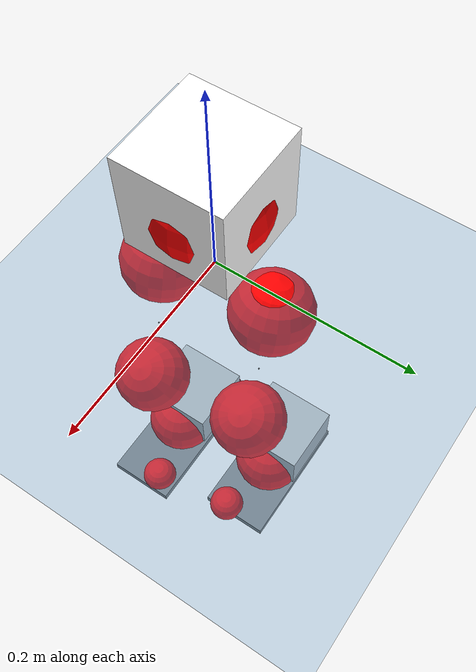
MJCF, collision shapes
<mujoco model="pi_12dof_release_v1">
  <compiler angle="radian" assetdir="assets" balanceinertia="true" inertiafromgeom="false"/>

  <option timestep="0.005" density="1.2" viscosity="2e-05"/>

  <size nkey="1"/>

  <visual>
    <quality shadowsize="8192"/>
    <map shadowclip="0.5"/>
  </visual>

  <default>
    <default class="/">
      <joint armature="0.01" damping="0.01" frictionloss="0.01"/>
      <geom contype="0" conaffinity="0" group="1" solref="-1000 -80"/>
      <site size="0.01 0.005 0.005" group="5"/>
      <general forcelimited="true" biastype="affine" gainprm="20" biasprm="0 -20 -0.5"/>
      <default class="foot">
        <geom size="0.0845 0.036 0.005" type="box" condim="6" group="4" priority="1" friction="0.9 0.2 0.2" solimp="0.015 1 0.005"/>
      </default>
      <default class="reward_collision_sphere">
        <geom group="5" rgba="1 0 0 1"/>
      </default>
    </default>
  </default>

  <asset>
    <texture type="skybox" colorspace="auto" name="//unnamed_texture_0" builtin="gradient" rgb1="0.95 0.95 0.95" rgb2="0.95 0.95 0.95" width="100" height="600"/>
    <texture type="2d" colorspace="auto" name="texplane" builtin="checker" rgb1="0.345 0.575 0.748" rgb2="0.345 0.575 0.748" markrgb="1 1 1" width="512" height="512"/>
    <material name="MatPlane" class="/" texture="texplane" texuniform="true" texrepeat="2 2" specular="0.9"/>
    <mesh name="baselink_1" class="/" file="baselink_1.STL"/>
    <mesh name="r_hip_pitch_link" class="/" file="r_hip_pitch_link.STL"/>
    <mesh name="r_hip_roll_link" class="/" file="r_hip_roll_link.STL"/>
    <mesh name="r_thigh_link" class="/" file="r_thigh_link.STL"/>
    <mesh name="r_calf_link" class="/" file="r_calf_link.STL"/>
    <mesh name="r_ankle_pitch_link" class="/" file="r_ankle_pitch_link.STL"/>
    <mesh name="r_ankle_roll_link" class="/" file="r_ankle_roll_link.STL"/>
    <mesh name="l_hip_pitch_link" class="/" file="l_hip_pitch_link.STL"/>
    <mesh name="l_hip_roll_link" class="/" file="l_hip_roll_link.STL"/>
    <mesh name="l_thigh_link" class="/" file="l_thigh_link.STL"/>
    <mesh name="l_calf_link" class="/" file="l_calf_link.STL"/>
    <mesh name="l_ankle_pitch_link" class="/" file="l_ankle_pitch_link.STL"/>
    <mesh name="l_ankle_roll_link" class="/" file="l_ankle_roll_link.STL"/>
  </asset>

  <worldbody>
    <geom name="floor" class="/" size="100 100 0.125" type="plane" group="0" material="MatPlane"/>
    <light name="toplight_shadow" class="/" pos="0 0 5" dir="0.0990148 0.0990148 -0.990148" type="directional" ambient="0.04 0.04 0.04" diffuse="0.55 0.55 0.55" specular="0.12 0.12 0.12"/>
    <light name="toplight_fill" class="/" pos="0 0 5" dir="0.0990148 0.0990148 -0.990148" type="directional" castshadow="false" ambient="0.04 0.04 0.04" diffuse="0.3 0.3 0.3" specular="0.08 0.08 0.08"/>
    <body name="trunk" pos="-0.000524638 -0.00231627 0.000275102" quat="0.999999 0.000868415 0.000344364 0.000702521">
      <inertial pos="0.000920184 -0.00283273 0.0511772" quat="0.690727 0.0150431 0.00805823 0.722914" mass="2.3022" diaginertia="0.0150531 0.00219083 0.0104825"/>
      <joint name="//unnamed_joint_0" type="free"/>
      <geom name="//unnamed_geom_1" class="/" type="mesh" density="0" rgba="1 1 1 1" mesh="baselink_1"/>
      <geom name="//unnamed_geom_2" class="/" size="0.0511009 0.0511009 0.0511009" pos="0 0 0.0962349" type="box" rgba="1 1 1 1"/>
      <geom name="//unnamed_geom_3" class="reward_collision_sphere" size="0.056211" pos="0 0 0.0842055"/>
      <site name="imu" class="/" pos="0.00341163 -7.53375e-05 -2.60673e-05" size="0.0102202"/>
      <camera name="track" class="/" pos="0 -1.51784 0" quat="0.707107 0.707107 0 0" mode="trackcom"/>
      <camera name="ego_camera" class="/" pos="0.0828149 0 0.216528" quat="-0.5 -0.5 0.5 0.5"/>
      <body name="r_hip_pitch_link" pos="0.00101454 -0.0165478 -0.0397193" quat="0.992209 0.000309967 -0.124585 9.31265e-05">
        <inertial pos="0.000875473 -0.0454772 -0.000744045" quat="-0.0156711 0.706807 -0.0382212 0.706199" mass="0.392622" diaginertia="0.000176315 2.40611e-05 0.000206193"/>
        <joint name="r_hip_pitch_joint" class="/" pos="0 0 0" axis="0.00461993 -0.999978 -0.00465799" range="-1.70519 1.28241" armature="0.0103591" damping="0.0260682" frictionloss="0.0115894"/>
        <geom name="//unnamed_geom_4" class="/" type="mesh" density="0" rgba="0.75294 0.75294 0.75294 1" mesh="r_hip_pitch_link"/>
        <geom name="//unnamed_geom_5" class="/" size="0.000511009 0.000511009 0.000511009" type="box" rgba="0.75294 0.75294 0.75294 1"/>
        <body name="r_hip_roll_link" pos="0.00312007 -0.0399307 0.00054541" quat="0.999999 -0.000369775 0.000772919 -0.000869002">
          <inertial pos="-0.00314411 0.00136386 -0.0725708" quat="0.706745 -0.0795537 -0.0801823 0.698393" mass="0.424247" diaginertia="0.00053159 7.25156e-05 0.000324726"/>
          <joint name="r_hip_roll_joint" class="/" pos="0 0 0" axis="-0.999976 -0.00502887 0.00485549" stiffness="0.000348587" range="-0.12676 0.484196" armature="0.011708" damping="0.0242276" frictionloss="0.0105521"/>
          <geom name="//unnamed_geom_6" class="/" type="mesh" density="0" rgba="0.75294 0.75294 0.75294 1" mesh="r_hip_roll_link"/>
          <geom name="//unnamed_geom_7" class="/" size="0.000511009 0.000511009 0.000511009" type="box" rgba="0.75294 0.75294 0.75294 1"/>
          <geom name="//unnamed_geom_8" class="reward_collision_sphere" size="0.0408808"/>
          <body name="r_thigh_link" pos="0.00118583 0.0024185 -0.083885" quat="1 -6.33312e-07 -0.000674025 -0.000154566">
            <inertial pos="-0.00224351 -0.00122753 -0.0599426" quat="0.736795 0.676117 0.000198647 -0.000230294" mass="0.117126" diaginertia="0.000199898 2.39785e-05 0.00014322"/>
            <joint name="r_thigh_joint" class="/" pos="0 0 0" axis="0.0104645 0.00510369 -0.999932" range="-0.352273 0.543388" armature="0.0117337" damping="0" frictionloss="0.0115432"/>
            <geom name="//unnamed_geom_9" class="/" type="mesh" density="0" rgba="0.75294 0.75294 0.75294 1" mesh="r_thigh_link"/>
            <geom name="//unnamed_geom_10" class="/" size="0.000511009 0.000511009 0.000511009" type="box" rgba="0.75294 0.75294 0.75294 1"/>
            <body name="r_calf_link" pos="-0.00182778 -0.00364964 -0.0860831" quat="0.947575 -0.000183182 0.319534 0.000291292">
              <inertial pos="0.000980718 -0.000115295 -0.0845725" quat="0.999921 0.00238057 0.0122828 0.00143297" mass="0.870846" diaginertia="0.00563955 0.00088103 0.000443107"/>
              <joint name="r_calf_joint" class="/" pos="0 0 0" axis="-0.0118637 -0.999924 -0.00328831" range="-1.68058 0.670009" armature="0.010477" damping="0.00261234" frictionloss="0.011616"/>
              <geom name="//unnamed_geom_11" class="/" type="mesh" density="0" rgba="0.75294 0.75294 0.75294 1" mesh="r_calf_link"/>
              <geom name="//unnamed_geom_12" class="/" size="0.000511009 0.000511009 0.000511009" type="box" rgba="0.75294 0.75294 0.75294 1"/>
              <geom name="//unnamed_geom_13" class="reward_collision_sphere" size="0.0408808"/>
              <body name="r_ankle_pitch_link" pos="-0.00031861 -0.00177639 -0.170722" quat="0.980068 -1.1076e-06 -0.19866 -3.09608e-06">
                <inertial pos="0.00656123 0.000653893 0.00237637" quat="0.00256934 0.707035 -0.00276338 0.707169" mass="0.187379" diaginertia="0.00049198 5.60571e-05 0.000302975"/>
                <joint name="r_ankle_pitch_joint" class="/" pos="0 0 0" axis="-0.005631 -0.999984 -0.000920906" stiffness="0.000863664" range="-1.34433 0.447272" armature="0.0115129" damping="0.00872794" frictionloss="0.0116354"/>
                <geom name="//unnamed_geom_14" class="/" type="mesh" density="0" rgba="0.75294 0.75294 0.75294 1" mesh="r_ankle_pitch_link"/>
                <geom name="//unnamed_geom_15" class="/" size="0.0398587 0.0408808 0.0255505" type="box" rgba="0.75294 0.75294 0.75294 1"/>
                <body name="r_ankle_roll_link" pos="0.0851165 -0.000763898 0.00268873" quat="1 0.000137695 -0.000151813 -0.000379375">
                  <inertial pos="-0.02851 0.00239718 -0.0178447" quat="0.560993 0.432619 0.434214 0.556405" mass="0.570967" diaginertia="0.00190353 0.000275739 0.000716729"/>
                  <joint name="r_ankle_roll_joint" class="/" pos="0 0 0" axis="-0.999954 0.0093136 0.00228007" stiffness="0.00981846" range="-0.103404 0.20638" armature="0.0104827" damping="0.0205538" frictionloss="0.010102"/>
                  <geom name="//unnamed_geom_16" class="/" type="mesh" density="0" rgba="0.75294 0.75294 0.75294 1" mesh="r_ankle_roll_link"/>
                  <geom name="//unnamed_geom_17" class="/" type="mesh" rgba="0.75294 0.75294 0.75294 1" mesh="r_ankle_roll_link"/>
                  <geom name="right_foot" class="foot" size="0.092591 0.0387522 0.00491471" pos="-0.0563141 0 -0.0529292"/>
                  <geom name="//unnamed_geom_19" class="reward_collision_sphere" size="0.0408808" pos="-0.0552099 0 -0.0240587"/>
                  <geom name="//unnamed_geom_20" class="reward_collision_sphere" size="0.0204404" pos="0.016563 0.0151784 -0.0481174"/>
                  <geom name="//unnamed_geom_21" class="reward_collision_sphere" size="0.0204404" pos="-0.132504 0.0151784 -0.0481174"/>
                  <site name="right_foot" class="foot" pos="-0.0563141 0 -0.0529292" size="0.0102202"/>
                </body>
              </body>
            </body>
          </body>
        </body>
      </body>
      <body name="l_hip_pitch_link" pos="-0.00145559 0.0191734 -0.0366581" quat="0.992199 -0.00010638 -0.124665 -6.13464e-05">
        <inertial pos="-0.000190647 0.041687 0.0019963" quat="-0.0417302 0.707413 0.0308507 0.704893" mass="0.401769" diaginertia="0.000212245 2.58898e-05 0.000257917"/>
        <joint name="l_hip_pitch_joint" class="/" pos="0 0 0" axis="0.00100272 0.999999 0.000890783" stiffness="0.0105131" range="-1.27049 1.80913" armature="0.0100473" damping="0.0107908" frictionloss="0.0100707"/>
        <geom name="//unnamed_geom_22" class="/" type="mesh" density="0" rgba="0.75294 0.75294 0.75294 1" mesh="l_hip_pitch_link"/>
        <geom name="//unnamed_geom_23" class="/" size="0.000511009 0.000511009 0.000511009" type="box" rgba="0.75294 0.75294 0.75294 1"/>
        <body name="l_hip_roll_link" pos="-0.00216073 0.0411165 0.00013724" quat="0.999999 0.000407979 0.00110435 -0.000549098">
          <inertial pos="-0.00390971 0.00216881 -0.0733978" quat="0.694527 -0.0681546 -0.0699226 0.71281" mass="0.400776" diaginertia="0.000534474 7.12789e-05 0.000334155"/>
          <joint name="l_hip_roll_joint" class="/" pos="0 0 0" axis="-0.99995 0.00373844 0.00929805" range="-0.510082 0.116129" armature="0.0114198" damping="0.00844421" frictionloss="0.00934449"/>
          <geom name="//unnamed_geom_24" class="/" type="mesh" density="0" rgba="0.75294 0.75294 0.75294 1" mesh="l_hip_roll_link"/>
          <geom name="//unnamed_geom_25" class="/" size="0.000511009 0.000511009 0.000511009" type="box" rgba="0.75294 0.75294 0.75294 1"/>
          <geom name="//unnamed_geom_26" class="reward_collision_sphere" size="0.0408808"/>
          <body name="l_thigh_link" pos="-0.000795312 -0.000838749 -0.0808907" quat="1 0.000609542 0.000118233 -0.000496134">
            <inertial pos="0.00102989 0.00137612 -0.0554914" quat="0.675827 0.73706 -0.000342273 0.000504718" mass="0.119175" diaginertia="0.000196038 2.27571e-05 0.000139093"/>
            <joint name="l_thigh_joint" class="/" pos="0 0 0" axis="0.000702968 0.000293186 -1" stiffness="0.0053469" range="-0.603474 0.287333" armature="0.00928131" damping="0" frictionloss="0.0101609"/>
            <geom name="//unnamed_geom_27" class="/" type="mesh" density="0" rgba="0.75294 0.75294 0.75294 1" mesh="l_thigh_link"/>
            <geom name="//unnamed_geom_28" class="/" size="0.000511009 0.000511009 0.000511009" type="box" rgba="0.75294 0.75294 0.75294 1"/>
            <body name="l_calf_link" pos="-0.00299959 -0.000331739 -0.0851249" quat="0.947358 0.000438238 0.320176 0.000401699">
              <inertial pos="-0.000251054 0.00231533 -0.0830003" quat="0.99999 0.00258649 -0.00141548 0.00343683" mass="0.853341" diaginertia="0.00568204 0.000863134 0.000443949"/>
              <joint name="l_calf_joint" class="/" pos="0 0 0" axis="-0.00764255 0.99997 -0.00101198" range="-0.594494 1.65295" armature="0.00972417" damping="0.0106422" frictionloss="0.0099628"/>
              <geom name="//unnamed_geom_29" class="/" type="mesh" density="0" rgba="0.75294 0.75294 0.75294 1" mesh="l_calf_link"/>
              <geom name="//unnamed_geom_30" class="/" size="0.000511009 0.000511009 0.000511009" type="box" rgba="0.75294 0.75294 0.75294 1"/>
              <geom name="//unnamed_geom_31" class="reward_collision_sphere" size="0.0408808"/>
              <body name="l_ankle_pitch_link" pos="-0.00226752 0.00353959 -0.169093" quat="0.980064 -0.000197165 -0.198683 1.1066e-05">
                <inertial pos="0.00546609 -0.00344028 0.0012942" quat="-0.00227777 0.70574 0.00711951 0.708431" mass="0.184893" diaginertia="0.000504324 5.55192e-05 0.00029002"/>
                <joint name="l_ankle_pitch_joint" class="/" pos="0 0 0" axis="-0.000659989 0.999997 0.00234224" stiffness="0.00946821" range="-0.476035 1.29278" armature="0.00890792" damping="0.0231124" frictionloss="0.009158"/>
                <geom name="//unnamed_geom_32" class="/" type="mesh" density="0" rgba="0.75294 0.75294 0.75294 1" mesh="l_ankle_pitch_link"/>
                <geom name="//unnamed_geom_33" class="/" size="0.0398587 0.0408808 0.0255505" type="box" rgba="0.75294 0.75294 0.75294 1"/>
                <body name="l_ankle_roll_link" pos="0.0846878 -0.000661936 0.000703446" quat="1 0.000107781 -7.93624e-05 -6.81677e-05">
                  <inertial pos="-0.0291031 -0.000925599 -0.018184" quat="0.559788 0.430596 0.434371 0.559058" mass="0.568638" diaginertia="0.00184319 0.000263191 0.000717842"/>
                  <joint name="l_ankle_roll_joint" class="/" pos="0 0 0" axis="-1 -1.20775e-05 -4.88661e-05" stiffness="0.00122494" range="-0.103243 0.158308" armature="0.0107472" damping="0" frictionloss="0.010102"/>
                  <geom name="//unnamed_geom_34" class="/" type="mesh" density="0" rgba="0.75294 0.75294 0.75294 1" mesh="l_ankle_roll_link"/>
                  <geom name="//unnamed_geom_35" class="/" type="mesh" rgba="0.75294 0.75294 0.75294 1" mesh="l_ankle_roll_link"/>
                  <geom name="left_foot" class="foot" size="0.0797666 0.0391934 0.00495331" pos="-0.0563141 0 -0.0529292"/>
                  <geom name="//unnamed_geom_37" class="reward_collision_sphere" size="0.0408808" pos="-0.0552099 0 -0.0240587"/>
                  <geom name="//unnamed_geom_38" class="reward_collision_sphere" size="0.0204404" pos="0.016563 -0.0151784 -0.0481174"/>
                  <geom name="//unnamed_geom_39" class="reward_collision_sphere" size="0.0204404" pos="-0.132504 -0.0151784 -0.0481174"/>
                  <site name="left_foot" class="foot" pos="-0.0563141 0 -0.0529292" size="0.0102202"/>
                </body>
              </body>
            </body>
          </body>
        </body>
      </body>
    </body>
  </worldbody>

  <contact>
    <pair class="/" geom1="floor" geom2="right_foot" name="//unnamed_contact_1"/>
    <pair class="/" geom1="floor" geom2="left_foot" name="//unnamed_contact_0"/>
  </contact>

  <actuator>
    <general name="r_hip_pitch_joint" class="/" joint="r_hip_pitch_joint" forcerange="-21.0084 21.0084" gainprm="19.9296" biasprm="0 -19.9296 -0.527115"/>
    <general name="r_hip_roll_joint" class="/" joint="r_hip_roll_joint" forcerange="-23.4134 23.4134" gainprm="19.9296" biasprm="0 -19.9296 -0.527115"/>
    <general name="r_thigh_joint" class="/" joint="r_thigh_joint" forcerange="-21.3065 21.3065" gainprm="19.9296" biasprm="0 -19.9296 -0.527115"/>
    <general name="r_calf_joint" class="/" joint="r_calf_joint" forcerange="-21.286 21.286" gainprm="19.9296" biasprm="0 -19.9296 -0.527115"/>
    <general name="r_ankle_pitch_joint" class="/" joint="r_ankle_pitch_joint" forcerange="-21.2952 21.2952" gainprm="19.9296" biasprm="0 -19.9296 -0.527115"/>
    <general name="r_ankle_roll_joint" class="/" joint="r_ankle_roll_joint" forcerange="-23.5592 23.5592" gainprm="19.9296" biasprm="0 -19.9296 -0.527115"/>
    <general name="l_hip_pitch_joint" class="/" joint="l_hip_pitch_joint" forcerange="-22.4289 22.4289" gainprm="19.9296" biasprm="0 -19.9296 -0.527115"/>
    <general name="l_hip_roll_joint" class="/" joint="l_hip_roll_joint" forcerange="-21.6326 21.6326" gainprm="19.9296" biasprm="0 -19.9296 -0.527115"/>
    <general name="l_thigh_joint" class="/" joint="l_thigh_joint" forcerange="-21.6555 21.6555" gainprm="19.9296" biasprm="0 -19.9296 -0.527115"/>
    <general name="l_calf_joint" class="/" joint="l_calf_joint" forcerange="-20.3476 20.3476" gainprm="19.9296" biasprm="0 -19.9296 -0.527115"/>
    <general name="l_ankle_pitch_joint" class="/" joint="l_ankle_pitch_joint" forcerange="-21.152 21.152" gainprm="19.9296" biasprm="0 -19.9296 -0.527115"/>
    <general name="l_ankle_roll_joint" class="/" joint="l_ankle_roll_joint" forcerange="-19.3612 19.3612" gainprm="19.9296" biasprm="0 -19.9296 -0.527115"/>
  </actuator>

  <sensor>
    <gyro site="imu" name="imu_angular_velocity"/>
    <velocimeter site="imu" name="imu_linear_velocity"/>
    <framelinvel objtype="site" objname="left_foot" name="left_foot_global_linear_velocity"/>
    <framelinvel objtype="site" objname="right_foot" name="right_foot_global_linear_velocity"/>
  </sensor>

  <keyframe>
    <key name="home" qpos="0 0 0.291 1 0 0 0 0.4 0 0 -0.8 0.4 0 -0.4 0 0 0.8 -0.4 0"/>
  </keyframe>
</mujoco>
